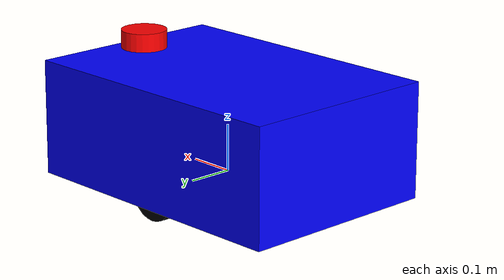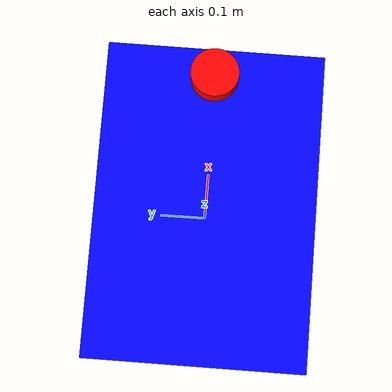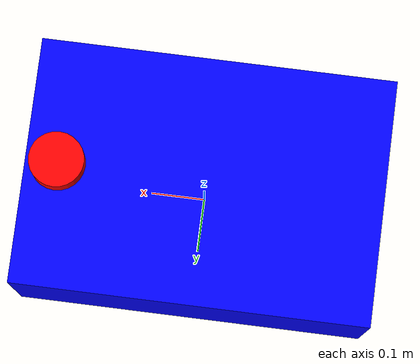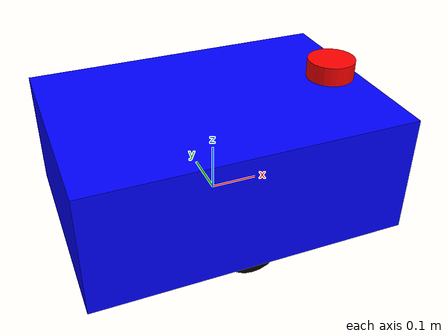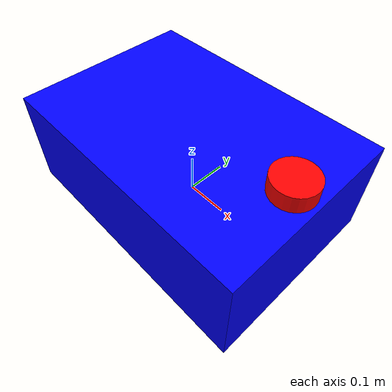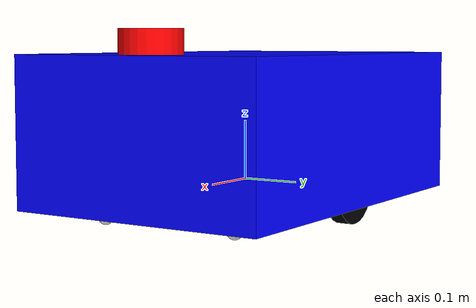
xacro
<?xml version="1.0"?>
<robot xmlns:xacro="http://www.ros.org/wiki/xacro"  name="robot">

    <xacro:arg name="use_ros2_control" default="true"/>
    <xacro:arg name="sim_mode" default="false"/>

    <xacro:include filename="robot_core.xacro" />

    <xacro:if value="$(arg use_ros2_control)">
        <xacro:include filename="ros2_control.xacro" />
    </xacro:if>
    <xacro:unless value="$(arg use_ros2_control)">
        <xacro:include filename="gazebo_control.xacro" />
    </xacro:unless>
    <xacro:include filename="lidar.xacro" />

</robot>

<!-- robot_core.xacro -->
<robot xmlns:xacro="http://www.ros.org/wiki/xacro" >

    <xacro:include filename="inertial_macros.xacro"/>

    <xacro:property name="chassis_length" value="0.65"/>
    <xacro:property name="chassis_width" value="0.45"/>
    <xacro:property name="chassis_height" value="0.25"/>
    <xacro:property name="chassis_mass" value="1.0"/>
    <xacro:property name="wheel_radius" value="0.06"/>
    <xacro:property name="wheel_thickness" value="0.025"/>
    <xacro:property name="wheel_mass" value="0.05"/>
    <xacro:property name="wheel_offset_x" value="${chassis_length/2}"/>
    <xacro:property name="wheel_offset_y" value="${chassis_width/2 - wheel_thickness }"/>
    <xacro:property name="wheel_offset_z" value="${wheel_radius - 2*caster_wheel_radius }"/>
    <xacro:property name="caster_wheel_radius" value="0.0135"/>
    <xacro:property name="caster_wheel_mass" value="0.01"/>
    <xacro:property name="caster_wheel_offset_x1" value="${chassis_length - 0.1}"/>
    <xacro:property name="caster_wheel_offset_x2" value="0.1"/>
    <xacro:property name="caster_wheel_offset_y" value="0.125"/>
    <xacro:property name="caster_wheel_offset_z" value="${-caster_wheel_radius}"/>

    <!-- MATERIAL COLOR-->

    <material name= "blue">
        <color rgba= "0 0 1 1" />
    </material>
    <material name= "green">
        <color rgba= "0 1 0 1" />
    </material>
    <material name= "red">
        <color rgba= "1 0 0 1" />
    </material>
    <material name= "black">
        <color rgba= "0 0 0 1" />
    </material>
    <material name= "white">
        <color rgba= "1 1 1 1" />
    </material>
    <material name= "yellow">
        <color rgba= "1 0.9 0.2 1" />
    </material>

    <!-- BASE LINK -->

    <link name="base_link">

    </link>

    <!-- BASE_FOOTPRINT LINK -->

    <joint name="base_footprint_joint" type="fixed">
        <parent link="base_link"/>
        <child link="base_footprint"/>
        <origin xyz="0 0 0" rpy="0 0 0"/>
    </joint>

    <link name="base_footprint">
    </link>

    <!-- CHASSIS LINK -->

    <joint name="chassis_joint" type="fixed">
        <parent link="base_link"/>
        <child link="chassis"/>
        <origin xyz="${-wheel_offset_x} 0 ${-wheel_offset_z}"/>
    </joint>

    <link name="chassis">
        <visual>
            <origin xyz="${chassis_length/2} 0 ${chassis_height/2}"/>
            <geometry>
                <box size="${chassis_length} ${chassis_width} ${chassis_height}"/>
            </geometry>
            <material name="blue"/>
        </visual>
        <collision>
            <origin xyz="${chassis_length/2} 0 ${chassis_height/2}"/>
            <geometry>
                <box size="${chassis_length} ${chassis_width} ${chassis_height}"/>
            </geometry>
        </collision>
        <xacro:inertial_box mass="0.5" x="${chassis_length}" y="${chassis_width}" z="${chassis_height}">
            <origin xyz="${chassis_length/2} 0 ${chassis_height/2}" rpy="0 0 0"/>
        </xacro:inertial_box>
    </link>

    <gazebo reference="chassis">
        <material>Gazebo/Blue</material>
    </gazebo>

    <!-- LEFT WHEEL LINK -->

    <joint name="left_wheel_joint" type="continuous">
        <parent link="base_link"/>
        <child link="left_wheel"/>
        <origin xyz="0 ${wheel_offset_y} 0" rpy="-${pi/2} 0 0" />
        <axis xyz="0 0 1"/>
    </joint>

    <link name="left_wheel">
        <visual>
            <geometry>
                <cylinder radius="${wheel_radius}" length="${wheel_thickness}"/>
            </geometry>
            <material name="black"/>
        </visual>
        <collision>
            <geometry>
                <sphere radius="${wheel_radius}"/>
            </geometry>
        </collision>
        <xacro:inertial_cylinder mass="${wheel_mass}" length="${wheel_thickness}" radius="${wheel_radius}">
            <origin xyz="0 0 0" rpy="0 0 0"/>
        </xacro:inertial_cylinder>
    </link>

    <gazebo reference="left_wheel">
        <material>Gazebo/Blace</material>
    </gazebo>

    <!-- RIGHT WHEEL LINK -->

    <joint name="right_wheel_joint" type="continuous">
        <parent link="base_link"/>
        <child link="right_wheel"/>
        <origin xyz="0 ${-wheel_offset_y} 0" rpy="${pi/2} 0 0" />
        <axis xyz="0 0 -1"/>
    </joint>

    <link name="right_wheel">
        <visual>
            <geometry>
                <cylinder radius="${wheel_radius}" length="${wheel_thickness}"/>
            </geometry>
            <material name="black"/>
        </visual>
        <collision>
            <geometry>
                <sphere radius="${wheel_radius}"/>
            </geometry>
        </collision>
        <xacro:inertial_cylinder mass="${wheel_mass}" length="${wheel_thickness}" radius="${wheel_radius}">
            <origin xyz="0 0 0" rpy="0 0 0"/>
        </xacro:inertial_cylinder>
    </link>

    <gazebo reference="right_wheel">
        <material>Gazebo/Black</material>
    </gazebo>

    <!-- CASTER WHEEL LINK -->

    <joint name="caster_wheel_joint1" type="fixed">
        <parent link="chassis"/>
        <child link="caster_wheel1"/>
        <origin xyz="${caster_wheel_offset_x1} ${caster_wheel_offset_y} ${caster_wheel_offset_z}"/>
    </joint>

    <joint name="caster_wheel_joint2" type="fixed">
        <parent link="chassis"/>
        <child link="caster_wheel2"/>
        <origin xyz="${caster_wheel_offset_x2} ${caster_wheel_offset_y} ${caster_wheel_offset_z}"/>
    </joint>

    <joint name="caster_wheel_joint3" type="fixed">
        <parent link="chassis"/>
        <child link="caster_wheel3"/>
        <origin xyz="${caster_wheel_offset_x1} ${-caster_wheel_offset_y} ${caster_wheel_offset_z}"/>
    </joint>

    <joint name="caster_wheel_joint4" type="fixed">
        <parent link="chassis"/>
        <child link="caster_wheel4"/>
        <origin xyz="${caster_wheel_offset_x2} ${-caster_wheel_offset_y} ${caster_wheel_offset_z}"/>
    </joint>

    <xacro:macro name="caster" params="pre">
        <link name="caster_wheel${pre}">
            <visual>
                <geometry>
                    <sphere radius="${caster_wheel_radius}"/>
                </geometry>
                <material name="white"/>
            </visual>
            <collision>
                <geometry>
                    <sphere radius="${caster_wheel_radius}"/>
                </geometry>
            </collision>
            <xacro:inertial_sphere mass="${caster_wheel_mass}" radius="${caster_wheel_radius}">
                <origin xyz="0 0 0" rpy="0 0 0"/>
            </xacro:inertial_sphere>
        </link>
    </xacro:macro>

    <xacro:caster pre="1" />
    <xacro:caster pre="2" />
    <xacro:caster pre="3" />
    <xacro:caster pre="4" />

    <gazebo reference="caster_wheel1">
        <material>Gazebo/Black</material>
        <mu1 value="0.001"/>
        <mu2 value="0.001"/>
    </gazebo>

    <gazebo reference="caster_wheel2">
        <material>Gazebo/Black</material>
        <mu1 value="0.001"/>
        <mu2 value="0.001"/>
    </gazebo>

    <gazebo reference="caster_wheel3">
        <material>Gazebo/Black</material>
        <mu1 value="0.001"/>
        <mu2 value="0.001"/>
    </gazebo>

    <gazebo reference="caster_wheel4">
        <material>Gazebo/Black</material>
        <mu1 value="0.001"/>
        <mu2 value="0.001"/>
    </gazebo>

</robot>

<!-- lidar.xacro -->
<robot xmlns:xacro="http://www.ros.org/wiki/xacro" >

    <joint name="laser_joint" type="fixed">
        <parent link="chassis"/>
        <child link="laser_frame"/>
        <origin xyz="${chassis_length - 0.06 } 0 ${chassis_height + 0.02}" rpy="0 0 0"/>
    </joint>

    <link name="laser_frame">
        <visual>
            <geometry>
                <cylinder radius="0.05" length="0.04"/>
            </geometry>
            <material name="red"/>
        </visual>
        <visual>
            <origin xyz="0 0 -0.05"/>
            <geometry>
                <cylinder radius="0.01" length="0.1"/>
            </geometry>
            <material name="black"/>
        </visual>
        <collision>
            <geometry>
                <cylinder radius="0.05" length="0.04"/>
            </geometry>
        </collision>
        <xacro:inertial_cylinder mass="0.1" length="0.04" radius="0.05">
            <origin xyz="0 0 0" rpy="0 0 0"/>
        </xacro:inertial_cylinder>
    </link>

    <gazebo reference="laser_frame">
        <material>Gazebo/Red</material>

        <sensor name="laser" type="ray">
            <pose> 0 0 0 0 0 0 </pose>
            <visualize>true</visualize>
            <update_rate>10</update_rate>
            <ray>
                <scan>
                    <horizontal>
                        <samples>360</samples>
                        <min_angle>-3.14</min_angle>
                        <max_angle>3.14</max_angle>
                    </horizontal>
                </scan>
                <range>
                    <min>0.3</min>
                    <max>12</max>
                </range>
            </ray>
            <plugin name="laser_controller" filename="libgazebo_ros_ray_sensor.so">
                <ros>
                    <argument>~/out:=scan</argument>
                </ros>
                <output_type>sensor_msgs/LaserScan</output_type>
                <frame_name>laser_frame</frame_name>
            </plugin>
        </sensor>
    </gazebo>

</robot>
